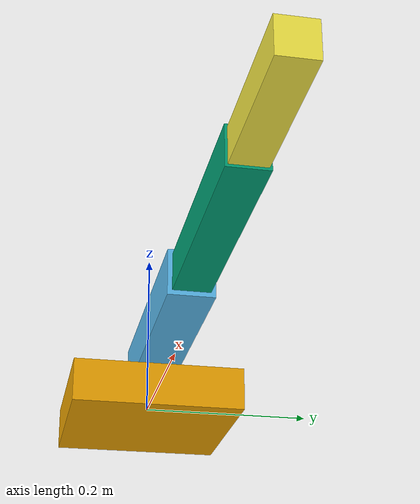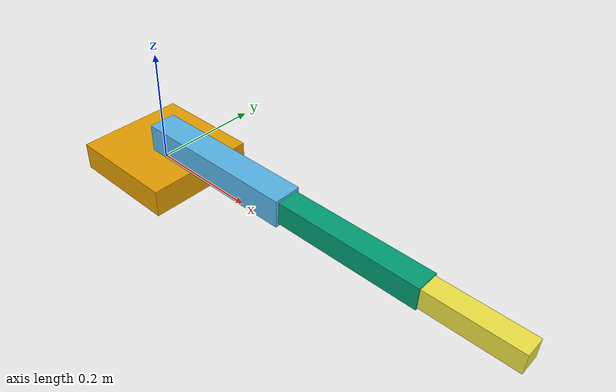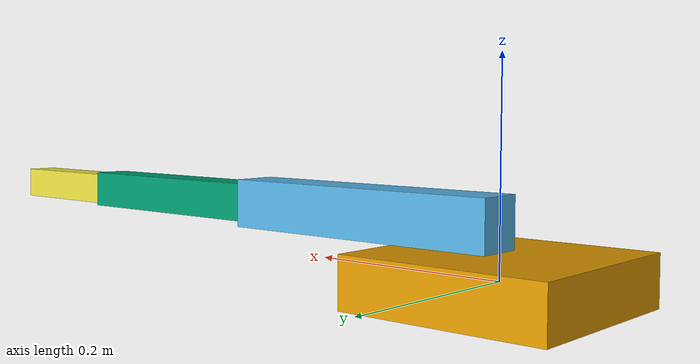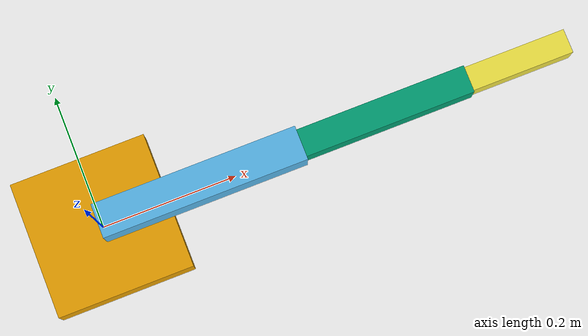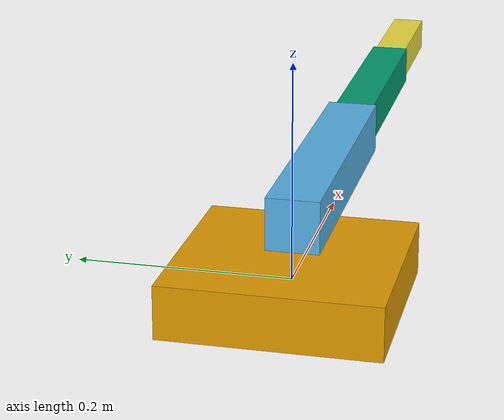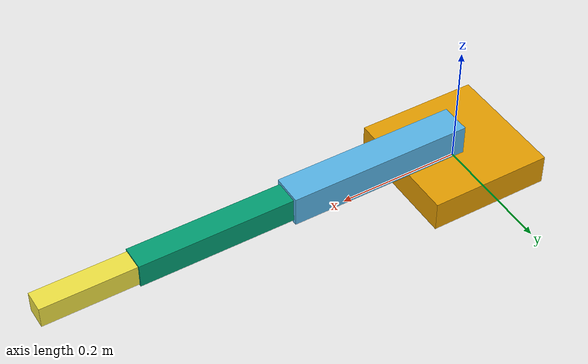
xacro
<?xml version="1.0"?>
<robot xmlns:xacro="http://www.ros.org/wiki/xacro" name="test_urdf">
  <xacro:arg name="ifname" default="can_arm"/>
  <xacro:arg name="shoulder_actuator_id" default="4"/>
  <xacro:arg name="elbow_actuator_id" default="5"/>
  <xacro:arg name="wrist_actuator_id" default="6"/>
  <xacro:arg name="timeout" default="0"/>
  <xacro:arg name="max_velocity" default="30.0"/>
  <xacro:arg name="shoulder_torque_constant" default="1.0"/>
  <xacro:arg name="elbow_torque_constant" default="1.0"/>
  <xacro:arg name="wrist_torque_constant" default="1.0"/>

  <xacro:macro name="box_inertial" params="mass x y z">
    <inertial>
      <mass value="${mass}"/>
      <origin xyz="0 0 0" rpy="0 0 0"/>
      <inertia ixx="${mass * (y*y + z*z) / 12.0}" ixy="0" ixz="0"
               iyy="${mass * (x*x + z*z) / 12.0}" iyz="0"
               izz="${mass * (x*x + y*y) / 12.0}"/>
    </inertial>
  </xacro:macro>

  <xacro:macro name="rmd_actuator" params="name joint_name actuator_id torque_constant current_limit current_release">
    <ros2_control name="${name}" type="actuator">
      <hardware>
        <plugin>rmd_hardware_interface/MyActuatorRmdHardwareInterface</plugin>
        <param name="ifname">$(arg ifname)</param>
        <param name="actuator_id">${actuator_id}</param>
        <param name="torque_constant">${torque_constant}</param>
        <param name="max_velocity">$(arg max_velocity)</param>
        <param name="velocity_alpha">0.1</param>
        <param name="effort_alpha">0.1</param>
        <param name="software_current_limit">${current_limit}</param>
        <param name="current_release_threshold">${current_release}</param>
        <param name="current_limit_duration_ms">50</param>
        <param name="current_retreat_velocity">0.1</param>
        <param name="current_max_retreat_distance">0.174533</param>
        <param name="timeout">$(arg timeout)</param>
      </hardware>
      <joint name="${joint_name}">
        <command_interface name="position"/>
        <command_interface name="velocity"/>
        <command_interface name="effort"/>
        <state_interface name="position"/>
        <state_interface name="velocity"/>
        <state_interface name="effort"/>
      </joint>
    </ros2_control>
  </xacro:macro>

  <link name="base_link">
    <visual>
      <geometry>
        <box size="0.20 0.20 0.05"/>
      </geometry>
    </visual>
    <collision>
      <geometry>
        <box size="0.20 0.20 0.05"/>
      </geometry>
    </collision>
    <xacro:box_inertial mass="1.0" x="0.20" y="0.20" z="0.05"/>
  </link>

  <link name="shoulder_link">
    <visual>
      <origin xyz="0.15 0 0" rpy="0 0 0"/>
      <geometry>
        <box size="0.30 0.05 0.05"/>
      </geometry>
    </visual>
    <collision>
      <origin xyz="0.15 0 0" rpy="0 0 0"/>
      <geometry>
        <box size="0.30 0.05 0.05"/>
      </geometry>
    </collision>
    <xacro:box_inertial mass="0.5" x="0.30" y="0.05" z="0.05"/>
  </link>

  <joint name="shoulder_lift_joint" type="revolute">
    <origin xyz="0 0 0.05" rpy="0 0 0"/>
    <parent link="base_link"/>
    <child link="shoulder_link"/>
    <axis xyz="0 0 1"/>
    <limit lower="-3.14159" upper="3.14159" effort="50.0" velocity="1.0"/>
  </joint>

  <link name="elbow_link">
    <visual>
      <origin xyz="0.125 0 0" rpy="0 0 0"/>
      <geometry>
        <box size="0.25 0.04 0.04"/>
      </geometry>
    </visual>
    <collision>
      <origin xyz="0.125 0 0" rpy="0 0 0"/>
      <geometry>
        <box size="0.25 0.04 0.04"/>
      </geometry>
    </collision>
    <xacro:box_inertial mass="0.4" x="0.25" y="0.04" z="0.04"/>
  </link>

  <joint name="elbow_joint" type="revolute">
    <origin xyz="0.30 0 0" rpy="0 0 0"/>
    <parent link="shoulder_link"/>
    <child link="elbow_link"/>
    <axis xyz="0 1 0"/>
    <limit lower="-3.14159" upper="3.14159" effort="40.0" velocity="1.0"/>
  </joint>

  <link name="wrist_link">
    <visual>
      <origin xyz="0.075 0 0" rpy="0 0 0"/>
      <geometry>
        <box size="0.15 0.035 0.035"/>
      </geometry>
    </visual>
    <collision>
      <origin xyz="0.075 0 0" rpy="0 0 0"/>
      <geometry>
        <box size="0.15 0.035 0.035"/>
      </geometry>
    </collision>
    <xacro:box_inertial mass="0.25" x="0.15" y="0.035" z="0.035"/>
  </link>

  <joint name="wrist_joint" type="revolute">
    <origin xyz="0.25 0 0" rpy="0 0 0"/>
    <parent link="elbow_link"/>
    <child link="wrist_link"/>
    <axis xyz="0 1 0"/>
    <limit lower="-3.14159" upper="3.14159" effort="25.0" velocity="1.0"/>
  </joint>

  <xacro:rmd_actuator name="shoulder_rmd" joint_name="shoulder_lift_joint"
                      actuator_id="$(arg shoulder_actuator_id)"
                      torque_constant="$(arg shoulder_torque_constant)"
                      current_limit="10.0" current_release="8.5"/>
  <xacro:rmd_actuator name="elbow_rmd" joint_name="elbow_joint"
                      actuator_id="$(arg elbow_actuator_id)"
                      torque_constant="$(arg elbow_torque_constant)"
                      current_limit="8.0" current_release="6.8"/>
</robot>
